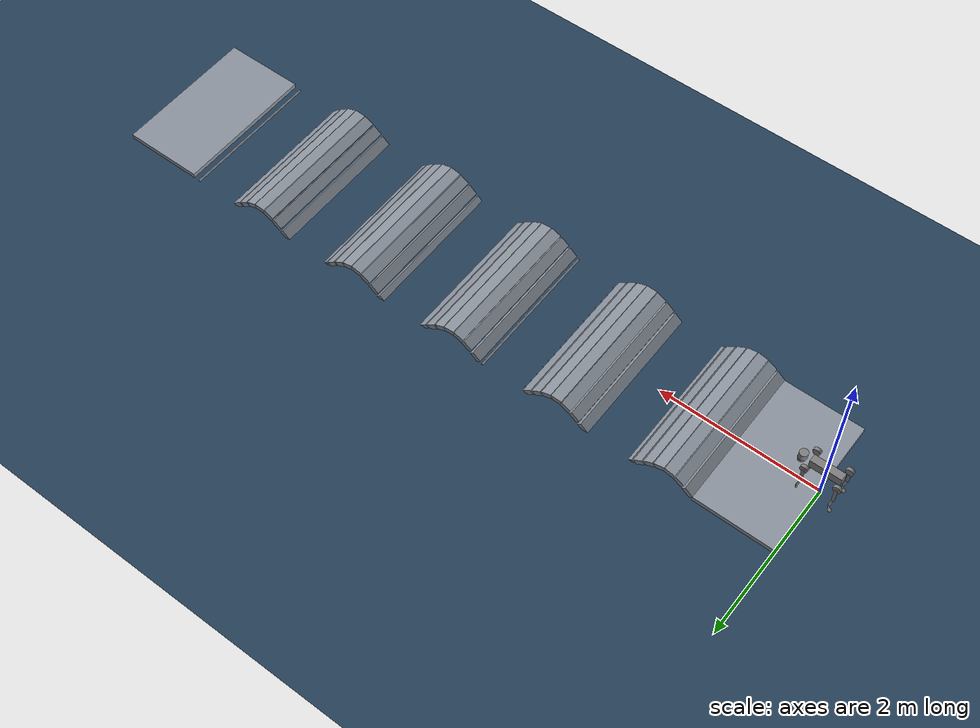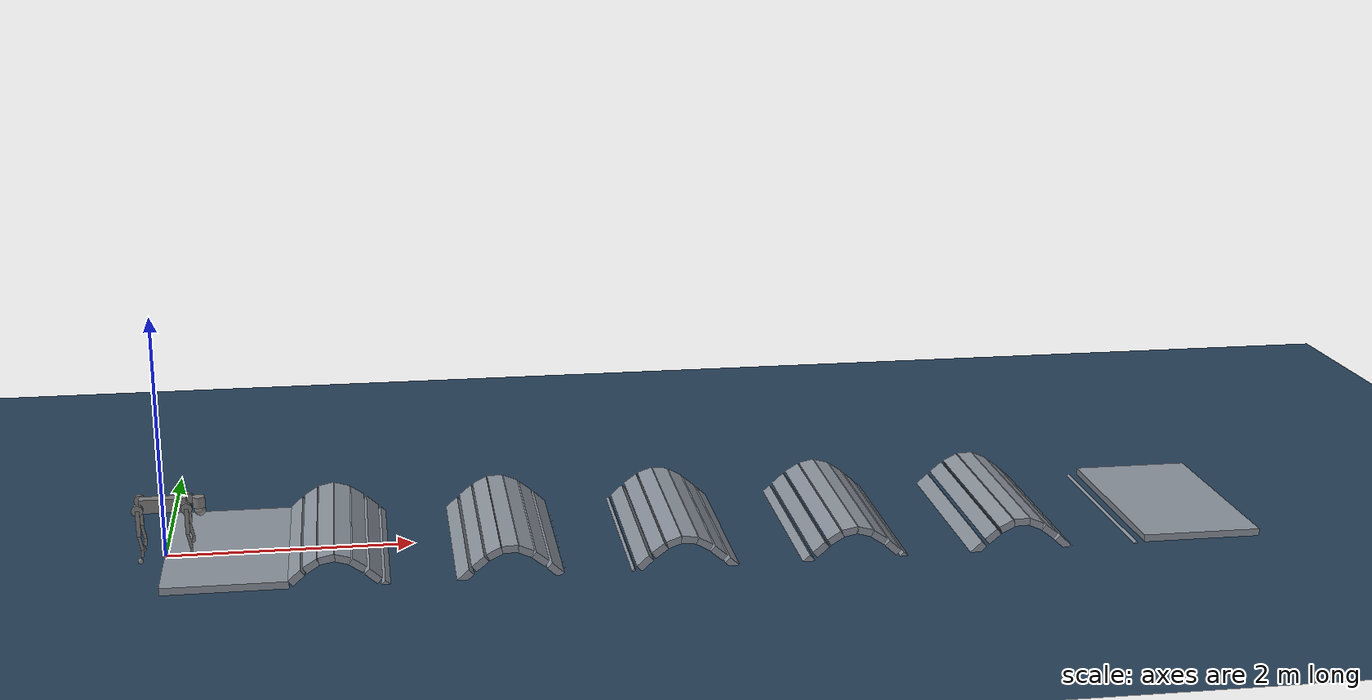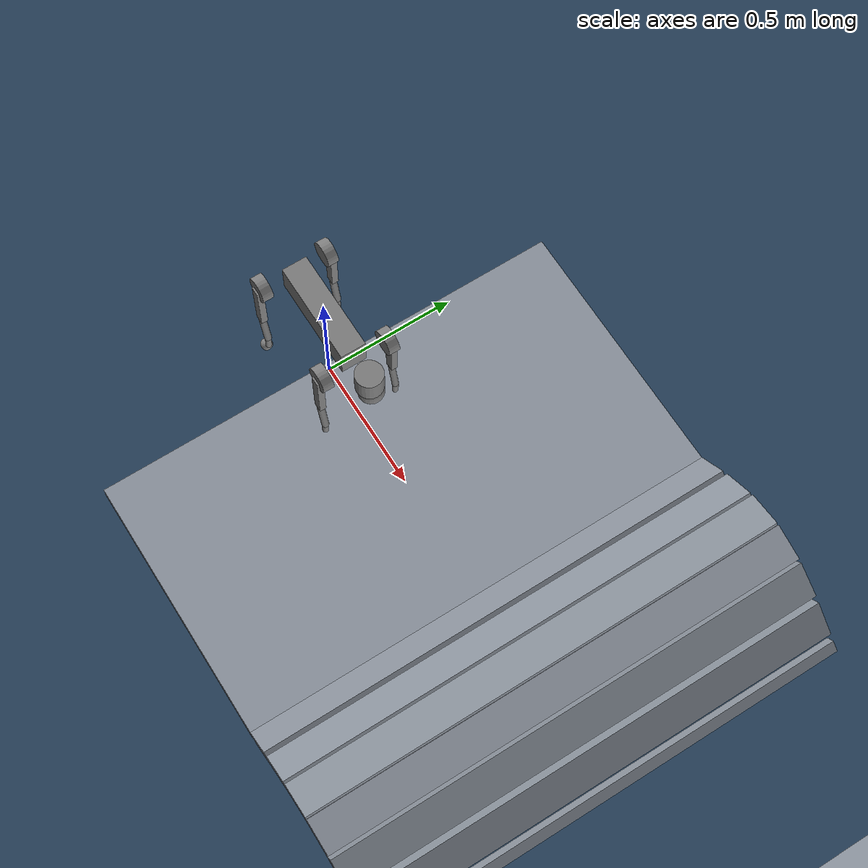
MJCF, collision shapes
<mujoco model="go2 scene">
  <include file="go2.xml" />
  <!-- Wave field. amplitude=0.20 num_waves=5 diff=0.5 -->
  <statistic center="3 0 0.3" extent="1.2" />
  <visual>
    <headlight diffuse="0.6 0.6 0.6" ambient="0.3 0.3 0.3" specular="0 0 0" />
    <rgba haze="0.15 0.25 0.35 1" />
    <global azimuth="-130" elevation="-20" />
  </visual>
  <asset>
    <texture type="skybox" builtin="gradient" rgb1="0.3 0.5 0.7" rgb2="0 0 0" width="512" height="3072" />
    <texture type="2d" name="groundplane" builtin="checker" mark="edge" rgb1="0.2 0.3 0.4" rgb2="0.1 0.2 0.3" markrgb="0.8 0.8 0.8" width="300" height="300" />
    <material name="groundplane" texture="groundplane" texuniform="true" texrepeat="5 5" reflectance="0.0" />
    <material name="terrain" rgba="0.55 0.58 0.62 1" reflectance="0.05" />
  </asset>
  <worldbody>
    <light pos="3 0 3.0" dir="0 0 -1" directional="true" />
    <geom name="floor" size="0 0 0.05" type="plane" material="groundplane" />
    <!-- start pad -->
    <geom type="box" pos="0.50000 0.00000 0.03000" size="0.50000 0.90000 0.03000" quat="1.000000 0.000000 0.000000 0.000000" material="terrain" />
    <!-- wave field -->
    <geom type="box" pos="1.06000 0.00000 0.08321" size="0.06500 0.90000 0.03000" quat="0.937075 0.000000 -0.349128 0.000000" material="terrain" />
    <geom type="box" pos="1.18000 0.00000 0.17456" size="0.06500 0.90000 0.03000" quat="0.961715 0.000000 -0.274053 0.000000" material="terrain" />
    <geom type="box" pos="1.30000 0.00000 0.22499" size="0.06500 0.90000 0.03000" quat="0.995146 0.000000 -0.098411 0.000000" material="terrain" />
    <geom type="box" pos="1.42000 0.00000 0.22021" size="0.06500 0.90000 0.03000" quat="0.990863 0.000000 0.134873 0.000000" material="terrain" />
    <geom type="box" pos="1.54000 0.00000 0.16159" size="0.06500 0.90000 0.03000" quat="0.956159 0.000000 0.292847 0.000000" material="terrain" />
    <geom type="box" pos="1.66000 0.00000 0.06571" size="0.06500 0.90000 0.03000" quat="0.935289 0.000000 0.353884 0.000000" material="terrain" />
    <geom type="box" pos="1.78000 0.00000 -0.04027" size="0.06500 0.90000 0.03000" quat="0.939566 0.000000 0.342368 0.000000" material="terrain" />
    <geom type="box" pos="1.90000 0.00000 -0.12637" size="0.06500 0.90000 0.03000" quat="0.967636 0.000000 0.252350 0.000000" material="terrain" />
    <geom type="box" pos="2.02000 0.00000 -0.16819" size="0.06500 0.90000 0.03000" quat="0.998203 0.000000 0.059919 0.000000" material="terrain" />
    <geom type="box" pos="2.14000 0.00000 -0.15391" size="0.06500 0.90000 0.03000" quat="0.985657 0.000000 -0.168762 0.000000" material="terrain" />
    <geom type="box" pos="2.26000 0.00000 -0.08756" size="0.06500 0.90000 0.03000" quat="0.951094 0.000000 -0.308902 0.000000" material="terrain" />
    <geom type="box" pos="2.38000 0.00000 0.01207" size="0.06500 0.90000 0.03000" quat="0.934216 0.000000 -0.356707 0.000000" material="terrain" />
    <geom type="box" pos="2.50000 0.00000 0.11678" size="0.06500 0.90000 0.03000" quat="0.942750 0.000000 -0.333500 0.000000" material="terrain" />
    <geom type="box" pos="2.62000 0.00000 0.19691" size="0.06500 0.90000 0.03000" quat="0.973755 0.000000 -0.227600 0.000000" material="terrain" />
    <geom type="box" pos="2.74000 0.00000 0.22980" size="0.06500 0.90000 0.03000" quat="0.999798 0.000000 -0.020123 0.000000" material="terrain" />
    <geom type="box" pos="2.86000 0.00000 0.20612" size="0.06500 0.90000 0.03000" quat="0.979851 0.000000 0.199728 0.000000" material="terrain" />
    <geom type="box" pos="2.98000 0.00000 0.13258" size="0.06500 0.90000 0.03000" quat="0.946605 0.000000 0.322396 0.000000" material="terrain" />
    <geom type="box" pos="3.10000 0.00000 0.03000" size="0.06500 0.90000 0.03000" quat="0.933858 0.000000 0.357643 0.000000" material="terrain" />
    <geom type="box" pos="3.22000 0.00000 -0.07258" size="0.06500 0.90000 0.03000" quat="0.946605 0.000000 0.322396 0.000000" material="terrain" />
    <geom type="box" pos="3.34000 0.00000 -0.14612" size="0.06500 0.90000 0.03000" quat="0.979851 0.000000 0.199728 0.000000" material="terrain" />
    <geom type="box" pos="3.46000 0.00000 -0.16980" size="0.06500 0.90000 0.03000" quat="0.999798 0.000000 -0.020123 0.000000" material="terrain" />
    <geom type="box" pos="3.58000 0.00000 -0.13691" size="0.06500 0.90000 0.03000" quat="0.973755 0.000000 -0.227600 0.000000" material="terrain" />
    <geom type="box" pos="3.70000 0.00000 -0.05678" size="0.06500 0.90000 0.03000" quat="0.942750 0.000000 -0.333500 0.000000" material="terrain" />
    <geom type="box" pos="3.82000 0.00000 0.04793" size="0.06500 0.90000 0.03000" quat="0.934216 0.000000 -0.356707 0.000000" material="terrain" />
    <geom type="box" pos="3.94000 0.00000 0.14756" size="0.06500 0.90000 0.03000" quat="0.951094 0.000000 -0.308902 0.000000" material="terrain" />
    <geom type="box" pos="4.06000 0.00000 0.21391" size="0.06500 0.90000 0.03000" quat="0.985657 0.000000 -0.168762 0.000000" material="terrain" />
    <geom type="box" pos="4.18000 0.00000 0.22819" size="0.06500 0.90000 0.03000" quat="0.998203 0.000000 0.059919 0.000000" material="terrain" />
    <geom type="box" pos="4.30000 0.00000 0.18637" size="0.06500 0.90000 0.03000" quat="0.967636 0.000000 0.252350 0.000000" material="terrain" />
    <geom type="box" pos="4.42000 0.00000 0.10027" size="0.06500 0.90000 0.03000" quat="0.939566 0.000000 0.342368 0.000000" material="terrain" />
    <geom type="box" pos="4.54000 0.00000 -0.00571" size="0.06500 0.90000 0.03000" quat="0.935289 0.000000 0.353884 0.000000" material="terrain" />
    <geom type="box" pos="4.66000 0.00000 -0.10159" size="0.06500 0.90000 0.03000" quat="0.956159 0.000000 0.292847 0.000000" material="terrain" />
    <geom type="box" pos="4.78000 0.00000 -0.16021" size="0.06500 0.90000 0.03000" quat="0.990863 0.000000 0.134873 0.000000" material="terrain" />
    <geom type="box" pos="4.90000 0.00000 -0.16499" size="0.06500 0.90000 0.03000" quat="0.995146 0.000000 -0.098411 0.000000" material="terrain" />
    <geom type="box" pos="5.02000 0.00000 -0.11456" size="0.06500 0.90000 0.03000" quat="0.961715 0.000000 -0.274053 0.000000" material="terrain" />
    <geom type="box" pos="5.14000 0.00000 -0.02321" size="0.06500 0.90000 0.03000" quat="0.937075 0.000000 -0.349128 0.000000" material="terrain" />
    <geom type="box" pos="5.26000 0.00000 0.08321" size="0.06500 0.90000 0.03000" quat="0.937075 0.000000 -0.349128 0.000000" material="terrain" />
    <geom type="box" pos="5.38000 0.00000 0.17456" size="0.06500 0.90000 0.03000" quat="0.961715 0.000000 -0.274053 0.000000" material="terrain" />
    <geom type="box" pos="5.50000 0.00000 0.22499" size="0.06500 0.90000 0.03000" quat="0.995146 0.000000 -0.098411 0.000000" material="terrain" />
    <geom type="box" pos="5.62000 0.00000 0.22021" size="0.06500 0.90000 0.03000" quat="0.990863 0.000000 0.134873 0.000000" material="terrain" />
    <geom type="box" pos="5.74000 0.00000 0.16159" size="0.06500 0.90000 0.03000" quat="0.956159 0.000000 0.292847 0.000000" material="terrain" />
    <geom type="box" pos="5.86000 0.00000 0.06571" size="0.06500 0.90000 0.03000" quat="0.935289 0.000000 0.353884 0.000000" material="terrain" />
    <geom type="box" pos="5.98000 0.00000 -0.04027" size="0.06500 0.90000 0.03000" quat="0.939566 0.000000 0.342368 0.000000" material="terrain" />
    <geom type="box" pos="6.10000 0.00000 -0.12637" size="0.06500 0.90000 0.03000" quat="0.967636 0.000000 0.252350 0.000000" material="terrain" />
    <geom type="box" pos="6.22000 0.00000 -0.16819" size="0.06500 0.90000 0.03000" quat="0.998203 0.000000 0.059919 0.000000" material="terrain" />
    <geom type="box" pos="6.34000 0.00000 -0.15391" size="0.06500 0.90000 0.03000" quat="0.985657 0.000000 -0.168762 0.000000" material="terrain" />
    <geom type="box" pos="6.46000 0.00000 -0.08756" size="0.06500 0.90000 0.03000" quat="0.951094 0.000000 -0.308902 0.000000" material="terrain" />
    <geom type="box" pos="6.58000 0.00000 0.01207" size="0.06500 0.90000 0.03000" quat="0.934216 0.000000 -0.356707 0.000000" material="terrain" />
    <geom type="box" pos="6.70000 0.00000 0.11678" size="0.06500 0.90000 0.03000" quat="0.942750 0.000000 -0.333500 0.000000" material="terrain" />
    <geom type="box" pos="6.82000 0.00000 0.19691" size="0.06500 0.90000 0.03000" quat="0.973755 0.000000 -0.227600 0.000000" material="terrain" />
    <geom type="box" pos="6.94000 0.00000 0.22980" size="0.06500 0.90000 0.03000" quat="0.999798 0.000000 -0.020123 0.000000" material="terrain" />
    <geom type="box" pos="7.06000 0.00000 0.20612" size="0.06500 0.90000 0.03000" quat="0.979851 0.000000 0.199728 0.000000" material="terrain" />
    <geom type="box" pos="7.18000 0.00000 0.13258" size="0.06500 0.90000 0.03000" quat="0.946605 0.000000 0.322396 0.000000" material="terrain" />
    <geom type="box" pos="7.30000 0.00000 0.03000" size="0.06500 0.90000 0.03000" quat="0.933858 0.000000 0.357643 0.000000" material="terrain" />
    <geom type="box" pos="7.42000 0.00000 -0.07258" size="0.06500 0.90000 0.03000" quat="0.946605 0.000000 0.322396 0.000000" material="terrain" />
    <geom type="box" pos="7.54000 0.00000 -0.14612" size="0.06500 0.90000 0.03000" quat="0.979851 0.000000 0.199728 0.000000" material="terrain" />
    <geom type="box" pos="7.66000 0.00000 -0.16980" size="0.06500 0.90000 0.03000" quat="0.999798 0.000000 -0.020123 0.000000" material="terrain" />
    <geom type="box" pos="7.78000 0.00000 -0.13691" size="0.06500 0.90000 0.03000" quat="0.973755 0.000000 -0.227600 0.000000" material="terrain" />
    <geom type="box" pos="7.90000 0.00000 -0.05678" size="0.06500 0.90000 0.03000" quat="0.942750 0.000000 -0.333500 0.000000" material="terrain" />
    <geom type="box" pos="8.50000 0.00000 0.03000" size="0.50000 0.90000 0.03000" quat="1.000000 0.000000 0.000000 0.000000" material="terrain" />
  </worldbody>
</mujoco>

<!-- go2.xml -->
<mujoco model="go2">
  <compiler angle="radian" meshdir="assets" autolimits="true"/>

  <option cone="elliptic" impratio="100"/>

  <default>
    <default class="go2">
      <geom friction="0.6" margin="0.001" condim="1"/>
      <joint axis="0 1 0" damping="2" armature="0.01" frictionloss="0.2"/>
      <position kp="25" kv="0.5" ctrlrange="-23.7 23.7"/>
      <default class="abduction">
        <joint axis="1 0 0" range="-1.0472 1.0472"/>
      </default>
      <default class="hip">
        <default class="front_hip">
          <joint range="-1.5708 3.4907"/>
        </default>
        <default class="back_hip">
          <joint range="-0.5236 4.5379"/>
        </default>
      </default>
      <default class="knee">
        <joint range="-2.7227 -0.83776"/>
        <position kp="25" kv="0.5" ctrlrange="-45.43 45.43"/>
      </default>
      <default class="visual">
        <geom type="mesh" contype="0" conaffinity="0" group="2"/>
      </default>
      <default class="collision">
        <geom group="3"/>
        <default class="foot">
          <geom size="0.022" pos="-0.002 0 -0.213" priority="1" solimp="0.015 1 0.022" condim="6"
            friction="0.8 0.02 0.01"/>
        </default>
      </default>
    </default>
  </default>

  <asset>
    <material name="metal" rgba=".9 .95 .95 1"/>
    <material name="black" rgba="0 0 0 1"/>
    <material name="white" rgba="1 1 1 1"/>
    <material name="gray" rgba="0.671705 0.692426 0.774270 1"/>

    <mesh file="base_0.obj"/>
    <mesh file="base_1.obj"/>
    <mesh file="base_2.obj"/>
    <mesh file="base_3.obj"/>
    <mesh file="base_4.obj"/>
    <mesh file="hip_0.obj"/>
    <mesh file="hip_1.obj"/>
    <mesh file="thigh_0.obj"/>
    <mesh file="thigh_1.obj"/>
    <mesh file="thigh_mirror_0.obj"/>
    <mesh file="thigh_mirror_1.obj"/>
    <mesh file="calf_0.obj"/>
    <mesh file="calf_1.obj"/>
    <mesh file="calf_mirror_0.obj"/>
    <mesh file="calf_mirror_1.obj"/>
    <mesh file="foot.obj"/>
  </asset>

  <worldbody>
    <body name="base" pos="0 0 0.445" childclass="go2">
      <inertial pos="0.021112 0 -0.005366" quat="-0.000543471 0.713435 -0.00173769 0.700719" mass="6.921"
        diaginertia="0.107027 0.0980771 0.0244531"/>
      <freejoint/>
      <geom mesh="base_0" material="black" class="visual"/>
      <geom mesh="base_1" material="black" class="visual"/>
      <geom mesh="base_2" material="black" class="visual"/>
      <geom mesh="base_3" material="white" class="visual"/>
      <geom mesh="base_4" material="gray" class="visual"/>
      <geom size="0.1881 0.04675 0.057" type="box" class="collision"/>
      <geom size="0.05 0.045" pos="0.285 0 0.01" type="cylinder" class="collision"/>
      <geom size="0.047" pos="0.293 0 -0.06" class="collision"/>
      <site name="imu" pos="-0.02557 0 0.04232"/>
      <body name="FL_hip" pos="0.1934 0.0465 0">
        <inertial pos="-0.0054 0.00194 -0.000105" quat="0.497014 0.499245 0.505462 0.498237" mass="0.678"
          diaginertia="0.00088403 0.000596003 0.000479967"/>
        <joint name="FL_hip_joint" class="abduction"/>
        <geom mesh="hip_0" material="metal" class="visual"/>
        <geom mesh="hip_1" material="gray" class="visual"/>
        <geom size="0.046 0.02" pos="0 0.08 0" quat="1 1 0 0" type="cylinder" class="collision"/>
        <body name="FL_thigh" pos="0 0.0955 0">
          <inertial pos="-0.00374 -0.0223 -0.0327" quat="0.829533 0.0847635 -0.0200632 0.551623" mass="1.152"
            diaginertia="0.00594973 0.00584149 0.000878787"/>
          <joint name="FL_thigh_joint" class="front_hip"/>
          <geom mesh="thigh_0" material="metal" class="visual"/>
          <geom mesh="thigh_1" material="gray" class="visual"/>
          <geom size="0.1065 0.01225 0.017" pos="0 0 -0.1065" quat="0.707107 0 0.707107 0" type="box" class="collision"/>
          <body name="FL_calf" pos="0 0 -0.213">
            <inertial pos="0.00629595 -0.000622121 -0.141417" quat="0.710672 0.00154099 -0.00450087 0.703508"
              mass="0.241352" diaginertia="0.0014901 0.00146356 5.31397e-05"/>
            <joint name="FL_calf_joint" class="knee"/>
            <geom mesh="calf_0" material="gray" class="visual"/>
            <geom mesh="calf_1" material="black" class="visual"/>
            <geom size="0.012 0.06" pos="0.008 0 -0.06" quat="0.994493 0 -0.104807 0" type="cylinder" class="collision"/>
            <geom size="0.011 0.0325" pos="0.02 0 -0.148" quat="0.999688 0 0.0249974 0" type="cylinder" class="collision"/>
            <geom pos="0 0 -0.213" mesh="foot" class="visual" material="black"/>
            <geom name="FL" class="foot"/>
          </body>
        </body>
      </body>
      <body name="FR_hip" pos="0.1934 -0.0465 0">
        <inertial pos="-0.0054 -0.00194 -0.000105" quat="0.498237 0.505462 0.499245 0.497014" mass="0.678"
          diaginertia="0.00088403 0.000596003 0.000479967"/>
        <joint name="FR_hip_joint" class="abduction"/>
        <geom mesh="hip_0" material="metal" class="visual" quat="4.63268e-05 1 0 0"/>
        <geom mesh="hip_1" material="gray" class="visual" quat="4.63268e-05 1 0 0"/>
        <geom size="0.046 0.02" pos="0 -0.08 0" quat="0.707107 0.707107 0 0" type="cylinder" class="collision"/>
        <body name="FR_thigh" pos="0 -0.0955 0">
          <inertial pos="-0.00374 0.0223 -0.0327" quat="0.551623 -0.0200632 0.0847635 0.829533" mass="1.152"
            diaginertia="0.00594973 0.00584149 0.000878787"/>
          <joint name="FR_thigh_joint" class="front_hip"/>
          <geom mesh="thigh_mirror_0" material="metal" class="visual"/>
          <geom mesh="thigh_mirror_1" material="gray" class="visual"/>
          <geom size="0.1065 0.01225 0.017" pos="0 0 -0.1065" quat="0.707107 0 0.707107 0" type="box" class="collision"/>
          <body name="FR_calf" pos="0 0 -0.213">
            <inertial pos="0.00629595 0.000622121 -0.141417" quat="0.703508 -0.00450087 0.00154099 0.710672"
              mass="0.241352" diaginertia="0.0014901 0.00146356 5.31397e-05"/>
            <joint name="FR_calf_joint" class="knee"/>
            <geom mesh="calf_mirror_0" material="gray" class="visual"/>
            <geom mesh="calf_mirror_1" material="black" class="visual"/>
            <geom size="0.013 0.06" pos="0.01 0 -0.06" quat="0.995004 0 -0.0998334 0" type="cylinder" class="collision"/>
            <geom size="0.011 0.0325" pos="0.02 0 -0.148" quat="0.999688 0 0.0249974 0" type="cylinder" class="collision"/>
            <geom pos="0 0 -0.213" mesh="foot" class="visual" material="black"/>
            <geom name="FR" class="foot"/>
          </body>
        </body>
      </body>
      <body name="RL_hip" pos="-0.1934 0.0465 0">
        <inertial pos="0.0054 0.00194 -0.000105" quat="0.505462 0.498237 0.497014 0.499245" mass="0.678"
          diaginertia="0.00088403 0.000596003 0.000479967"/>
        <joint name="RL_hip_joint" class="abduction"/>
        <geom mesh="hip_0" material="metal" class="visual" quat="4.63268e-05 0 1 0"/>
        <geom mesh="hip_1" material="gray" class="visual" quat="4.63268e-05 0 1 0"/>
        <geom size="0.046 0.02" pos="0 0.08 0" quat="0.707107 0.707107 0 0" type="cylinder" class="collision"/>
        <body name="RL_thigh" pos="0 0.0955 0">
          <inertial pos="-0.00374 -0.0223 -0.0327" quat="0.829533 0.0847635 -0.0200632 0.551623" mass="1.152"
            diaginertia="0.00594973 0.00584149 0.000878787"/>
          <joint name="RL_thigh_joint" class="back_hip"/>
          <geom mesh="thigh_0" material="metal" class="visual"/>
          <geom mesh="thigh_1" material="gray" class="visual"/>
          <geom size="0.1065 0.01225 0.017" pos="0 0 -0.1065" quat="0.707107 0 0.707107 0" type="box" class="collision"/>
          <body name="RL_calf" pos="0 0 -0.213">
            <inertial pos="0.00629595 -0.000622121 -0.141417" quat="0.710672 0.00154099 -0.00450087 0.703508"
              mass="0.241352" diaginertia="0.0014901 0.00146356 5.31397e-05"/>
            <joint name="RL_calf_joint" class="knee"/>
            <geom mesh="calf_0" material="gray" class="visual"/>
            <geom mesh="calf_1" material="black" class="visual"/>
            <geom size="0.013 0.06" pos="0.01 0 -0.06" quat="0.995004 0 -0.0998334 0" type="cylinder" class="collision"/>
            <geom size="0.011 0.0325" pos="0.02 0 -0.148" quat="0.999688 0 0.0249974 0" type="cylinder" class="collision"/>
            <geom pos="0 0 -0.213" mesh="foot" class="visual" material="black"/>
            <geom name="RL" class="foot"/>
          </body>
        </body>
      </body>
      <body name="RR_hip" pos="-0.1934 -0.0465 0">
        <inertial pos="0.0054 -0.00194 -0.000105" quat="0.499245 0.497014 0.498237 0.505462" mass="0.678"
          diaginertia="0.00088403 0.000596003 0.000479967"/>
        <joint name="RR_hip_joint" class="abduction"/>
        <geom mesh="hip_0" material="metal" class="visual" quat="2.14617e-09 4.63268e-05 4.63268e-05 -1"/>
        <geom mesh="hip_1" material="gray" class="visual" quat="2.14617e-09 4.63268e-05 4.63268e-05 -1"/>
        <geom size="0.046 0.02" pos="0 -0.08 0" quat="0.707107 0.707107 0 0" type="cylinder" class="collision"/>
        <body name="RR_thigh" pos="0 -0.0955 0">
          <inertial pos="-0.00374 0.0223 -0.0327" quat="0.551623 -0.0200632 0.0847635 0.829533" mass="1.152"
            diaginertia="0.00594973 0.00584149 0.000878787"/>
          <joint name="RR_thigh_joint" class="back_hip"/>
          <geom mesh="thigh_mirror_0" material="metal" class="visual"/>
          <geom mesh="thigh_mirror_1" material="gray" class="visual"/>
          <geom size="0.1065 0.01225 0.017" pos="0 0 -0.1065" quat="0.707107 0 0.707107 0" type="box" class="collision"/>
          <body name="RR_calf" pos="0 0 -0.213">
            <inertial pos="0.00629595 0.000622121 -0.141417" quat="0.703508 -0.00450087 0.00154099 0.710672"
              mass="0.241352" diaginertia="0.0014901 0.00146356 5.31397e-05"/>
            <joint name="RR_calf_joint" class="knee"/>
            <geom mesh="calf_mirror_0" material="gray" class="visual"/>
            <geom mesh="calf_mirror_1" material="black" class="visual"/>
            <geom size="0.013 0.06" pos="0.01 0 -0.06" quat="0.995004 0 -0.0998334 0" type="cylinder" class="collision"/>
            <geom size="0.011 0.0325" pos="0.02 0 -0.148" quat="0.999688 0 0.0249974 0" type="cylinder" class="collision"/>
            <geom pos="0 0 -0.213" mesh="foot" class="visual" material="black"/>
            <geom name="RR" class="foot"/>
          </body>
        </body>
      </body>
    </body>
  </worldbody>

  <actuator>
    <position class="abduction" name="FL_hip" joint="FL_hip_joint"/>
    <position class="hip" name="FL_thigh" joint="FL_thigh_joint"/>
    <position class="knee" name="FL_calf" joint="FL_calf_joint"/>
    <position class="abduction" name="FR_hip" joint="FR_hip_joint"/>
    <position class="hip" name="FR_thigh" joint="FR_thigh_joint"/>
    <position class="knee" name="FR_calf" joint="FR_calf_joint"/>
    <position class="abduction" name="RL_hip" joint="RL_hip_joint"/>
    <position class="hip" name="RL_thigh" joint="RL_thigh_joint"/>
    <position class="knee" name="RL_calf" joint="RL_calf_joint"/>
    <position class="abduction" name="RR_hip" joint="RR_hip_joint"/>
    <position class="hip" name="RR_thigh" joint="RR_thigh_joint"/>
    <position class="knee" name="RR_calf" joint="RR_calf_joint"/>
  </actuator>

  <sensor>
        <gyro site="imu" name="gyro" />
        <accelerometer site="imu" name="accelerometer" />
        <velocimeter site="imu" name="local_linvel" />
        <framepos objtype="site" objname="imu" name="torso_pos" />
        <framezaxis objtype="site" objname="imu" name="gravity_vector" />
        <framexaxis objtype="site" objname="imu" name="torso_x_axis_vec" />
        <framexaxis objtype="site" objname="imu" name="torso_y_axis_vec" />
        <framequat objtype="site" objname="imu" name="orientation" />
        <framelinvel objtype="site" objname="imu" name="global_linvel" />
  </sensor>

  <keyframe>
    <key name="home" qpos="0 0 0.27 1 0 0 0 0 0.9 -1.8 0 0.9 -1.8 0 0.9 -1.8 0 0.9 -1.8"
      ctrl="0 0.9 -1.8 0 0.9 -1.8 0 0.9 -1.8 0 0.9 -1.8"/>
  </keyframe>
</mujoco>
